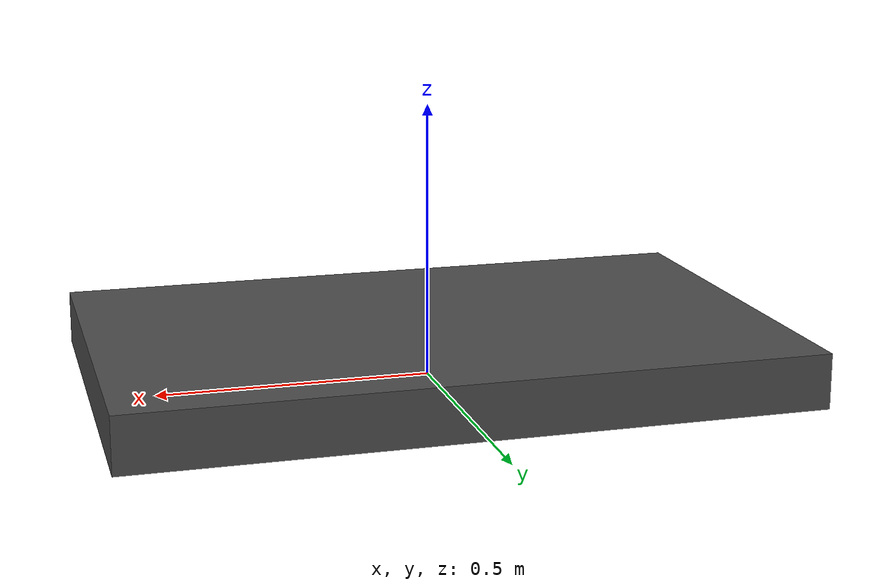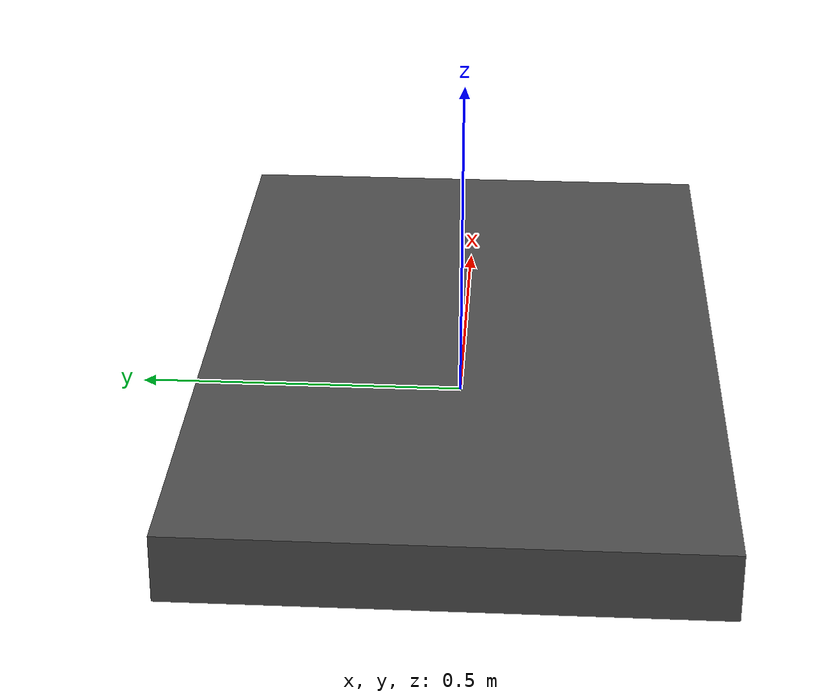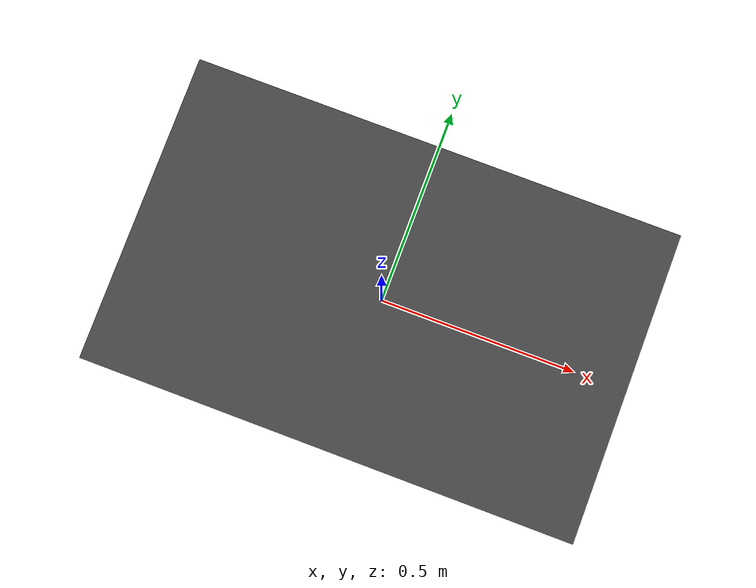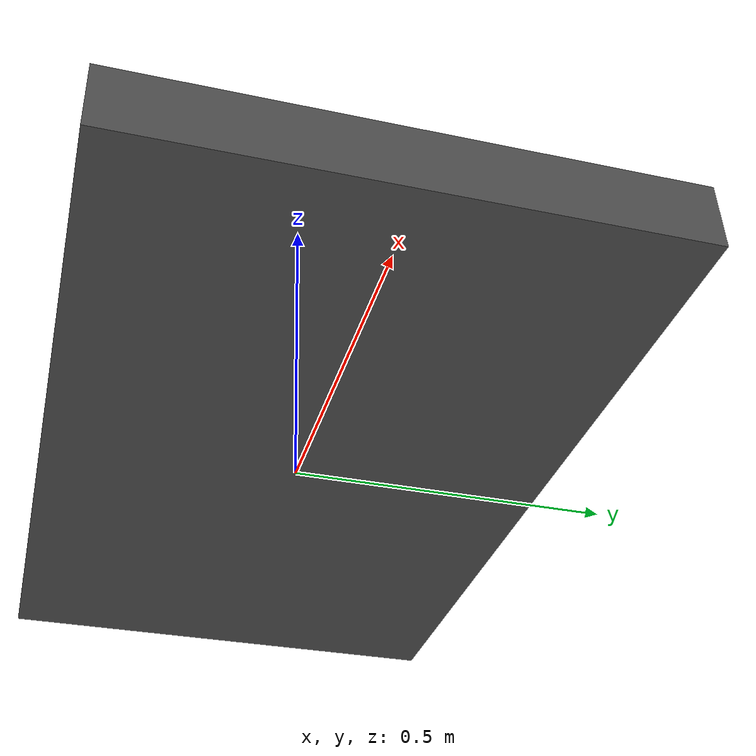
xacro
<?xml version="1.0" encoding="utf-8"?>
<robot name="ur5e_on_table" xmlns:xacro="http://www.ros.org/wiki/xacro">

  <material name="workbench_grey">
    <color rgba="0.3 0.3 0.3 1.0"/>
  </material>

  <link name="table">
    <origin xyz="0.0 0.0 0.05" rpy="0.0 0.0 0.0"/>
    <visual>
      <geometry>
        <box size="1.23 0.77 0.1"/>
      </geometry>
      <material name="workbench_grey"/>
    </visual>
    <collision>
      <geometry>
        <box size="1.23 0.77 0.1"/>
      </geometry>
    </collision>
  </link>

  <joint name="mount_link_to_table_joint" type="fixed">
    <parent link="table_robot_mount_link" />
    <child link="table" />
    <origin xyz="0.0 0.0 0.05" rpy="0.0 0.0 0.0"/>
  </joint>
  <link name="table_robot_mount_link"/>

  <!-- Back wall -->
  <joint name="mount_link_to_back_wall" type="fixed">
    <parent link="table_robot_mount_link" />
    <child link="back_wall" />
    <origin xyz="0.0 -0.4 0.8" rpy="0 0 0" />
  </joint>
  <link name="back_wall">
    <collision>
      <origin xyz="0 0 0" rpy="0 0 0" />
      <geometry>
        <box size="1.23 0.01 1.6"/>
      </geometry>
    </collision>
  </link>
</robot>
